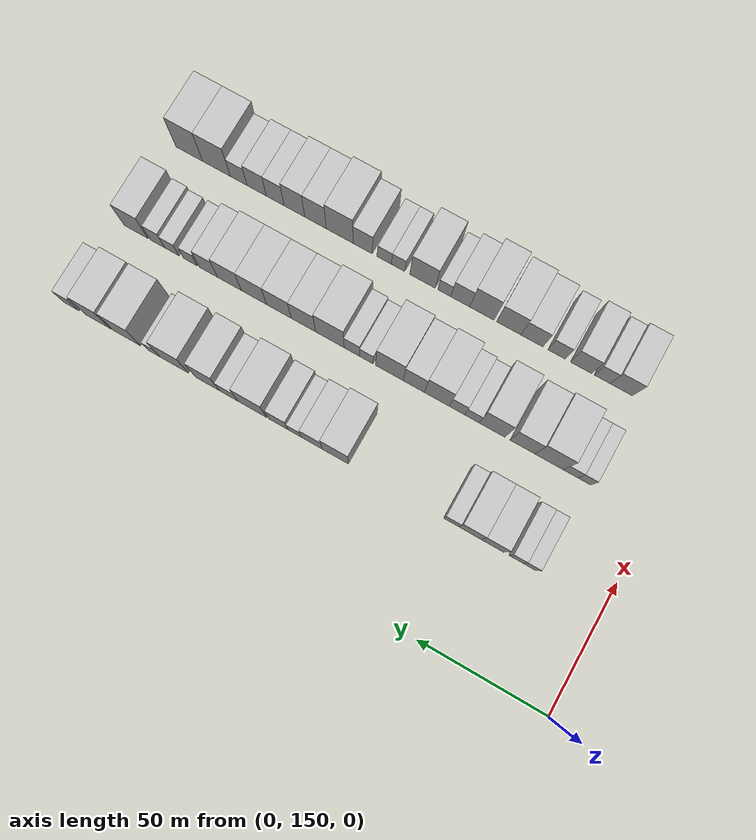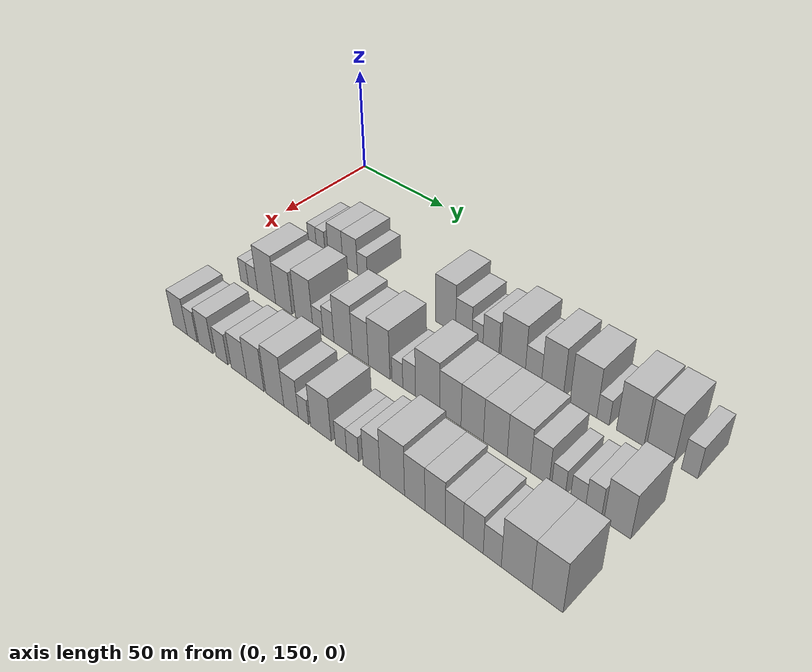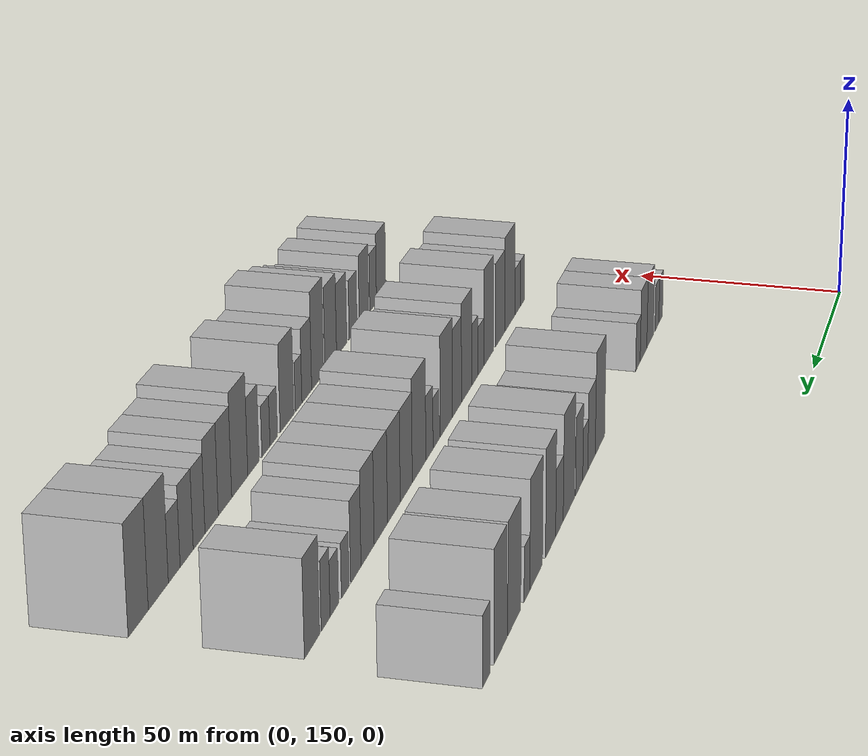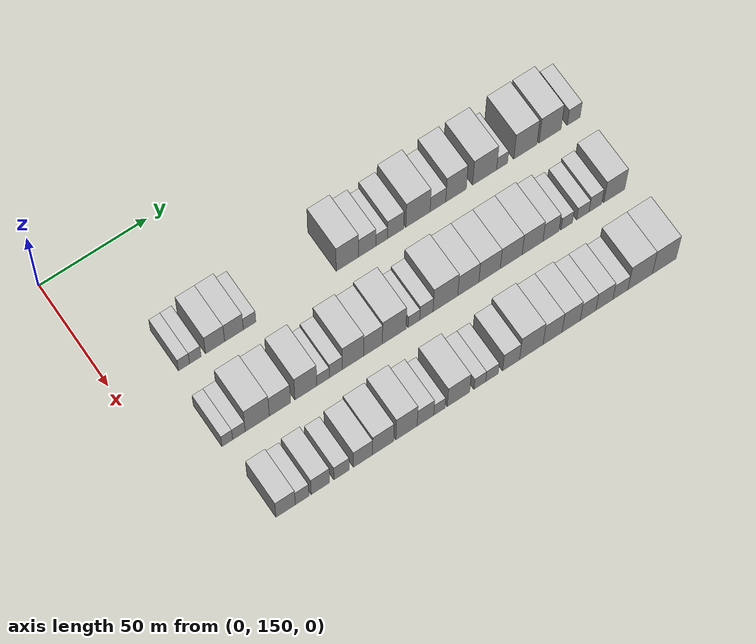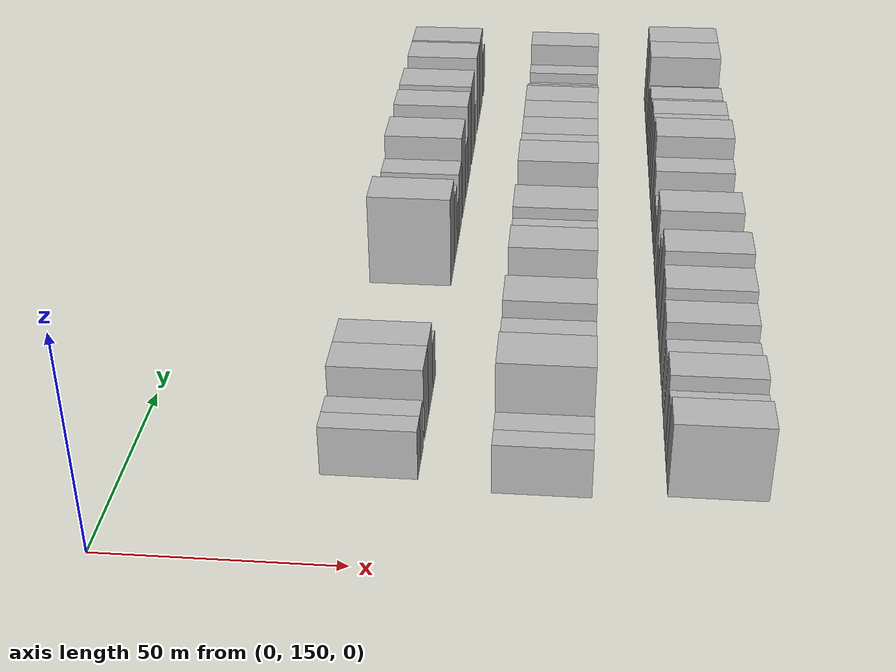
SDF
<sdf version="1.6">
 <world name="default">
  <model name="building_60">
   <static>1</static>
   <pose>50.0000 178.3990 0 0.000000 0.000000 0.000000</pose>
   <link name="link">
    <pose>0 0 6.00 0 0 0</pose>
    <collision name="collision"><geometry><box><size>20.0000 5.0717 12.0000</size></box></geometry></collision>
    <visual name="visual">
     <cast_shadows>0</cast_shadows>
     <geometry><box><size>20.0000 5.0717 12.0000</size></box></geometry>
     <material>
      <script>
       <uri>model://HANNAS_wall/materials/scripts</uri>
       <uri>model://HANNAS_wall/materials/textures</uri>
       <name>vrc/HANNAS_wall</name>
      </script>
     </material>
    </visual>
   </link>
  </model>
  <model name="building_61">
   <static>1</static>
   <pose>50.0000 183.6051 0 0.000000 0.000000 0.000000</pose>
   <link name="link">
    <pose>0 0 6.00 0 0 0</pose>
    <collision name="collision"><geometry><box><size>20.0000 5.3404 12.0000</size></box></geometry></collision>
    <visual name="visual">
     <cast_shadows>0</cast_shadows>
     <geometry><box><size>20.0000 5.3404 12.0000</size></box></geometry>
     <material>
      <script>
       <uri>model://HANNAS_wall/materials/scripts</uri>
       <uri>model://HANNAS_wall/materials/textures</uri>
       <name>vrc/HANNAS_wall</name>
      </script>
     </material>
    </visual>
   </link>
  </model>
  <model name="building_62">
   <static>1</static>
   <pose>50.0000 192.6957 0 0.000000 0.000000 0.000000</pose>
   <link name="link">
    <pose>0 0 9.00 0 0 0</pose>
    <collision name="collision"><geometry><box><size>20.0000 8.8409 18.0000</size></box></geometry></collision>
    <visual name="visual">
     <cast_shadows>0</cast_shadows>
     <geometry><box><size>20.0000 8.8409 18.0000</size></box></geometry>
     <material>
      <script>
       <uri>model://HANNAS_wall/materials/scripts</uri>
       <uri>model://HANNAS_wall/materials/textures</uri>
       <name>vrc/HANNAS_wall</name>
      </script>
     </material>
    </visual>
   </link>
  </model>
  <model name="building_63">
   <static>1</static>
   <pose>50.0000 201.4526 0 0.000000 0.000000 0.000000</pose>
   <link name="link">
    <pose>0 0 9.00 0 0 0</pose>
    <collision name="collision"><geometry><box><size>20.0000 8.6728 18.0000</size></box></geometry></collision>
    <visual name="visual">
     <cast_shadows>0</cast_shadows>
     <geometry><box><size>20.0000 8.6728 18.0000</size></box></geometry>
     <material>
      <script>
       <uri>model://HANNAS_wall/materials/scripts</uri>
       <uri>model://HANNAS_wall/materials/textures</uri>
       <name>vrc/HANNAS_wall</name>
      </script>
     </material>
    </visual>
   </link>
  </model>
  <model name="building_64">
   <static>1</static>
   <pose>50.0000 208.6995 0 0.000000 0.000000 0.000000</pose>
   <link name="link">
    <pose>0 0 6.00 0 0 0</pose>
    <collision name="collision"><geometry><box><size>20.0000 5.8210 12.0000</size></box></geometry></collision>
    <visual name="visual">
     <cast_shadows>0</cast_shadows>
     <geometry><box><size>20.0000 5.8210 12.0000</size></box></geometry>
     <material>
      <script>
       <uri>model://HANNAS_wall/materials/scripts</uri>
       <uri>model://HANNAS_wall/materials/textures</uri>
       <name>vrc/HANNAS_wall</name>
      </script>
     </material>
    </visual>
   </link>
  </model>
  <model name="building_65">
   <static>1</static>
   <pose>50.0000 254.3861 0 0.000000 0.000000 0.000000</pose>
   <link name="link">
    <pose>0 0 12.00 0 0 0</pose>
    <collision name="collision"><geometry><box><size>20.0000 10.5174 24.0000</size></box></geometry></collision>
    <visual name="visual">
     <cast_shadows>0</cast_shadows>
     <geometry><box><size>20.0000 10.5174 24.0000</size></box></geometry>
     <material>
      <script>
       <uri>model://HANNAS_wall/materials/scripts</uri>
       <uri>model://HANNAS_wall/materials/textures</uri>
       <name>vrc/HANNAS_wall</name>
      </script>
     </material>
    </visual>
   </link>
  </model>
  <model name="building_66">
   <static>1</static>
   <pose>50.0000 263.7143 0 0.000000 0.000000 0.000000</pose>
   <link name="link">
    <pose>0 0 9.00 0 0 0</pose>
    <collision name="collision"><geometry><box><size>20.0000 8.1390 18.0000</size></box></geometry></collision>
    <visual name="visual">
     <cast_shadows>0</cast_shadows>
     <geometry><box><size>20.0000 8.1390 18.0000</size></box></geometry>
     <material>
      <script>
       <uri>model://HANNAS_wall/materials/scripts</uri>
       <uri>model://HANNAS_wall/materials/textures</uri>
       <name>vrc/HANNAS_wall</name>
      </script>
     </material>
    </visual>
   </link>
  </model>
  <model name="building_67">
   <static>1</static>
   <pose>50.0000 270.5140 0 0.000000 0.000000 0.000000</pose>
   <link name="link">
    <pose>0 0 6.00 0 0 0</pose>
    <collision name="collision"><geometry><box><size>20.0000 5.4605 12.0000</size></box></geometry></collision>
    <visual name="visual">
     <cast_shadows>0</cast_shadows>
     <geometry><box><size>20.0000 5.4605 12.0000</size></box></geometry>
     <material>
      <script>
       <uri>model://HANNAS_wall/materials/scripts</uri>
       <uri>model://HANNAS_wall/materials/textures</uri>
       <name>vrc/HANNAS_wall</name>
      </script>
     </material>
    </visual>
   </link>
  </model>
  <model name="building_68">
   <static>1</static>
   <pose>50.0000 277.1077 0 0.000000 0.000000 0.000000</pose>
   <link name="link">
    <pose>0 0 9.00 0 0 0</pose>
    <collision name="collision"><geometry><box><size>20.0000 7.7270 18.0000</size></box></geometry></collision>
    <visual name="visual">
     <cast_shadows>0</cast_shadows>
     <geometry><box><size>20.0000 7.7270 18.0000</size></box></geometry>
     <material>
      <script>
       <uri>model://HANNAS_wall/materials/scripts</uri>
       <uri>model://HANNAS_wall/materials/textures</uri>
       <name>vrc/HANNAS_wall</name>
      </script>
     </material>
    </visual>
   </link>
  </model>
  <model name="building_69">
   <static>1</static>
   <pose>50.0000 287.7398 0 0.000000 0.000000 0.000000</pose>
   <link name="link">
    <pose>0 0 12.00 0 0 0</pose>
    <collision name="collision"><geometry><box><size>20.0000 11.5373 24.0000</size></box></geometry></collision>
    <visual name="visual">
     <cast_shadows>0</cast_shadows>
     <geometry><box><size>20.0000 11.5373 24.0000</size></box></geometry>
     <material>
      <script>
       <uri>model://HANNAS_wall/materials/scripts</uri>
       <uri>model://HANNAS_wall/materials/textures</uri>
       <name>vrc/HANNAS_wall</name>
      </script>
     </material>
    </visual>
   </link>
  </model>
  <model name="building_70">
   <static>1</static>
   <pose>50.0000 297.2410 0 0.000000 0.000000 0.000000</pose>
   <link name="link">
    <pose>0 0 7.50 0 0 0</pose>
    <collision name="collision"><geometry><box><size>20.0000 7.4651 15.0000</size></box></geometry></collision>
    <visual name="visual">
     <cast_shadows>0</cast_shadows>
     <geometry><box><size>20.0000 7.4651 15.0000</size></box></geometry>
     <material>
      <script>
       <uri>model://HANNAS_wall/materials/scripts</uri>
       <uri>model://HANNAS_wall/materials/textures</uri>
       <name>vrc/HANNAS_wall</name>
      </script>
     </material>
    </visual>
   </link>
  </model>
  <model name="building_71">
   <static>1</static>
   <pose>50.0000 305.9000 0 0.000000 0.000000 0.000000</pose>
   <link name="link">
    <pose>0 0 12.00 0 0 0</pose>
    <collision name="collision"><geometry><box><size>20.0000 9.8528 24.0000</size></box></geometry></collision>
    <visual name="visual">
     <cast_shadows>0</cast_shadows>
     <geometry><box><size>20.0000 9.8528 24.0000</size></box></geometry>
     <material>
      <script>
       <uri>model://HANNAS_wall/materials/scripts</uri>
       <uri>model://HANNAS_wall/materials/textures</uri>
       <name>vrc/HANNAS_wall</name>
      </script>
     </material>
    </visual>
   </link>
  </model>
  <model name="building_72">
   <static>1</static>
   <pose>50.0000 319.5955 0 0.000000 0.000000 0.000000</pose>
   <link name="link">
    <pose>0 0 12.00 0 0 0</pose>
    <collision name="collision"><geometry><box><size>20.0000 11.5381 24.0000</size></box></geometry></collision>
    <visual name="visual">
     <cast_shadows>0</cast_shadows>
     <geometry><box><size>20.0000 11.5381 24.0000</size></box></geometry>
     <material>
      <script>
       <uri>model://HANNAS_wall/materials/scripts</uri>
       <uri>model://HANNAS_wall/materials/textures</uri>
       <name>vrc/HANNAS_wall</name>
      </script>
     </material>
    </visual>
   </link>
  </model>
  <model name="building_73">
   <static>1</static>
   <pose>50.0000 327.9993 0 0.000000 0.000000 0.000000</pose>
   <link name="link">
    <pose>0 0 6.00 0 0 0</pose>
    <collision name="collision"><geometry><box><size>20.0000 5.2696 12.0000</size></box></geometry></collision>
    <visual name="visual">
     <cast_shadows>0</cast_shadows>
     <geometry><box><size>20.0000 5.2696 12.0000</size></box></geometry>
     <material>
      <script>
       <uri>model://HANNAS_wall/materials/scripts</uri>
       <uri>model://HANNAS_wall/materials/textures</uri>
       <name>vrc/HANNAS_wall</name>
      </script>
     </material>
    </visual>
   </link>
  </model>
  <model name="building_74">
   <static>1</static>
   <pose>50.0000 339.2341 0 0.000000 0.000000 0.000000</pose>
   <link name="link">
    <pose>0 0 12.00 0 0 0</pose>
    <collision name="collision"><geometry><box><size>20.0000 11.2000 24.0000</size></box></geometry></collision>
    <visual name="visual">
     <cast_shadows>0</cast_shadows>
     <geometry><box><size>20.0000 11.2000 24.0000</size></box></geometry>
     <material>
      <script>
       <uri>model://HANNAS_wall/materials/scripts</uri>
       <uri>model://HANNAS_wall/materials/textures</uri>
       <name>vrc/HANNAS_wall</name>
      </script>
     </material>
    </visual>
   </link>
  </model>
  <model name="building_75">
   <static>1</static>
   <pose>50.0000 351.1819 0 0.000000 0.000000 0.000000</pose>
   <link name="link">
    <pose>0 0 12.00 0 0 0</pose>
    <collision name="collision"><geometry><box><size>20.0000 10.6956 24.0000</size></box></geometry></collision>
    <visual name="visual">
     <cast_shadows>0</cast_shadows>
     <geometry><box><size>20.0000 10.6956 24.0000</size></box></geometry>
     <material>
      <script>
       <uri>model://HANNAS_wall/materials/scripts</uri>
       <uri>model://HANNAS_wall/materials/textures</uri>
       <name>vrc/HANNAS_wall</name>
      </script>
     </material>
    </visual>
   </link>
  </model>
  <model name="building_76">
   <static>1</static>
   <pose>50.0000 362.6598 0 0.000000 0.000000 0.000000</pose>
   <link name="link">
    <pose>0 0 7.50 0 0 0</pose>
    <collision name="collision"><geometry><box><size>20.0000 6.2600 15.0000</size></box></geometry></collision>
    <visual name="visual">
     <cast_shadows>0</cast_shadows>
     <geometry><box><size>20.0000 6.2600 15.0000</size></box></geometry>
     <material>
      <script>
       <uri>model://HANNAS_wall/materials/scripts</uri>
       <uri>model://HANNAS_wall/materials/textures</uri>
       <name>vrc/HANNAS_wall</name>
      </script>
     </material>
    </visual>
   </link>
  </model>
  <model name="building_139">
   <static>1</static>
   <pose>85.0000 175.3890 0 0.000000 0.000000 0.000000</pose>
   <link name="link">
    <pose>0 0 6.00 0 0 0</pose>
    <collision name="collision"><geometry><box><size>20.0000 4.9404 12.0000</size></box></geometry></collision>
    <visual name="visual">
     <cast_shadows>0</cast_shadows>
     <geometry><box><size>20.0000 4.9404 12.0000</size></box></geometry>
     <material>
      <script>
       <uri>model://HANNAS_wall/materials/scripts</uri>
       <uri>model://HANNAS_wall/materials/textures</uri>
       <name>vrc/HANNAS_wall</name>
      </script>
     </material>
    </visual>
   </link>
  </model>
  <model name="building_140">
   <static>1</static>
   <pose>85.0000 180.7229 0 0.000000 0.000000 0.000000</pose>
   <link name="link">
    <pose>0 0 6.00 0 0 0</pose>
    <collision name="collision"><geometry><box><size>20.0000 5.7275 12.0000</size></box></geometry></collision>
    <visual name="visual">
     <cast_shadows>0</cast_shadows>
     <geometry><box><size>20.0000 5.7275 12.0000</size></box></geometry>
     <material>
      <script>
       <uri>model://HANNAS_wall/materials/scripts</uri>
       <uri>model://HANNAS_wall/materials/textures</uri>
       <name>vrc/HANNAS_wall</name>
      </script>
     </material>
    </visual>
   </link>
  </model>
  <model name="building_141">
   <static>1</static>
   <pose>85.0000 189.1299 0 0.000000 0.000000 0.000000</pose>
   <link name="link">
    <pose>0 0 12.00 0 0 0</pose>
    <collision name="collision"><geometry><box><size>20.0000 11.0865 24.0000</size></box></geometry></collision>
    <visual name="visual">
     <cast_shadows>0</cast_shadows>
     <geometry><box><size>20.0000 11.0865 24.0000</size></box></geometry>
     <material>
      <script>
       <uri>model://HANNAS_wall/materials/scripts</uri>
       <uri>model://HANNAS_wall/materials/textures</uri>
       <name>vrc/HANNAS_wall</name>
      </script>
     </material>
    </visual>
   </link>
  </model>
  <model name="building_142">
   <static>1</static>
   <pose>85.0000 199.5646 0 0.000000 0.000000 0.000000</pose>
   <link name="link">
    <pose>0 0 10.50 0 0 0</pose>
    <collision name="collision"><geometry><box><size>20.0000 9.7830 21.0000</size></box></geometry></collision>
    <visual name="visual">
     <cast_shadows>0</cast_shadows>
     <geometry><box><size>20.0000 9.7830 21.0000</size></box></geometry>
     <material>
      <script>
       <uri>model://HANNAS_wall/materials/scripts</uri>
       <uri>model://HANNAS_wall/materials/textures</uri>
       <name>vrc/HANNAS_wall</name>
      </script>
     </material>
    </visual>
   </link>
  </model>
  <model name="building_143">
   <static>1</static>
   <pose>85.0000 211.5332 0 0.000000 0.000000 0.000000</pose>
   <link name="link">
    <pose>0 0 12.00 0 0 0</pose>
    <collision name="collision"><geometry><box><size>20.0000 10.1542 24.0000</size></box></geometry></collision>
    <visual name="visual">
     <cast_shadows>0</cast_shadows>
     <geometry><box><size>20.0000 10.1542 24.0000</size></box></geometry>
     <material>
      <script>
       <uri>model://HANNAS_wall/materials/scripts</uri>
       <uri>model://HANNAS_wall/materials/textures</uri>
       <name>vrc/HANNAS_wall</name>
      </script>
     </material>
    </visual>
   </link>
  </model>
  <model name="building_144">
   <static>1</static>
   <pose>85.0000 219.5038 0 0.000000 0.000000 0.000000</pose>
   <link name="link">
    <pose>0 0 6.00 0 0 0</pose>
    <collision name="collision"><geometry><box><size>20.0000 5.7872 12.0000</size></box></geometry></collision>
    <visual name="visual">
     <cast_shadows>0</cast_shadows>
     <geometry><box><size>20.0000 5.7872 12.0000</size></box></geometry>
     <material>
      <script>
       <uri>model://HANNAS_wall/materials/scripts</uri>
       <uri>model://HANNAS_wall/materials/textures</uri>
       <name>vrc/HANNAS_wall</name>
      </script>
     </material>
    </visual>
   </link>
  </model>
  <model name="building_145">
   <static>1</static>
   <pose>85.0000 225.4265 0 0.000000 0.000000 0.000000</pose>
   <link name="link">
    <pose>0 0 7.50 0 0 0</pose>
    <collision name="collision"><geometry><box><size>20.0000 6.0582 15.0000</size></box></geometry></collision>
    <visual name="visual">
     <cast_shadows>0</cast_shadows>
     <geometry><box><size>20.0000 6.0582 15.0000</size></box></geometry>
     <material>
      <script>
       <uri>model://HANNAS_wall/materials/scripts</uri>
       <uri>model://HANNAS_wall/materials/textures</uri>
       <name>vrc/HANNAS_wall</name>
      </script>
     </material>
    </visual>
   </link>
  </model>
  <model name="building_146">
   <static>1</static>
   <pose>85.0000 233.4573 0 0.000000 0.000000 0.000000</pose>
   <link name="link">
    <pose>0 0 12.00 0 0 0</pose>
    <collision name="collision"><geometry><box><size>20.0000 10.0033 24.0000</size></box></geometry></collision>
    <visual name="visual">
     <cast_shadows>0</cast_shadows>
     <geometry><box><size>20.0000 10.0033 24.0000</size></box></geometry>
     <material>
      <script>
       <uri>model://HANNAS_wall/materials/scripts</uri>
       <uri>model://HANNAS_wall/materials/textures</uri>
       <name>vrc/HANNAS_wall</name>
      </script>
     </material>
    </visual>
   </link>
  </model>
  <model name="building_147">
   <static>1</static>
   <pose>85.0000 242.7644 0 0.000000 0.000000 0.000000</pose>
   <link name="link">
    <pose>0 0 10.50 0 0 0</pose>
    <collision name="collision"><geometry><box><size>20.0000 8.6109 21.0000</size></box></geometry></collision>
    <visual name="visual">
     <cast_shadows>0</cast_shadows>
     <geometry><box><size>20.0000 8.6109 21.0000</size></box></geometry>
     <material>
      <script>
       <uri>model://HANNAS_wall/materials/scripts</uri>
       <uri>model://HANNAS_wall/materials/textures</uri>
       <name>vrc/HANNAS_wall</name>
      </script>
     </material>
    </visual>
   </link>
  </model>
  <model name="building_148">
   <static>1</static>
   <pose>85.0000 252.6089 0 0.000000 0.000000 0.000000</pose>
   <link name="link">
    <pose>0 0 12.00 0 0 0</pose>
    <collision name="collision"><geometry><box><size>20.0000 11.0781 24.0000</size></box></geometry></collision>
    <visual name="visual">
     <cast_shadows>0</cast_shadows>
     <geometry><box><size>20.0000 11.0781 24.0000</size></box></geometry>
     <material>
      <script>
       <uri>model://HANNAS_wall/materials/scripts</uri>
       <uri>model://HANNAS_wall/materials/textures</uri>
       <name>vrc/HANNAS_wall</name>
      </script>
     </material>
    </visual>
   </link>
  </model>
  <model name="building_149">
   <static>1</static>
   <pose>85.0000 261.8703 0 0.000000 0.000000 0.000000</pose>
   <link name="link">
    <pose>0 0 6.00 0 0 0</pose>
    <collision name="collision"><geometry><box><size>20.0000 5.4449 12.0000</size></box></geometry></collision>
    <visual name="visual">
     <cast_shadows>0</cast_shadows>
     <geometry><box><size>20.0000 5.4449 12.0000</size></box></geometry>
     <material>
      <script>
       <uri>model://HANNAS_wall/materials/scripts</uri>
       <uri>model://HANNAS_wall/materials/textures</uri>
       <name>vrc/HANNAS_wall</name>
      </script>
     </material>
    </visual>
   </link>
  </model>
  <model name="building_150">
   <static>1</static>
   <pose>85.0000 267.7256 0 0.000000 0.000000 0.000000</pose>
   <link name="link">
    <pose>0 0 7.50 0 0 0</pose>
    <collision name="collision"><geometry><box><size>20.0000 6.2657 15.0000</size></box></geometry></collision>
    <visual name="visual">
     <cast_shadows>0</cast_shadows>
     <geometry><box><size>20.0000 6.2657 15.0000</size></box></geometry>
     <material>
      <script>
       <uri>model://HANNAS_wall/materials/scripts</uri>
       <uri>model://HANNAS_wall/materials/textures</uri>
       <name>vrc/HANNAS_wall</name>
      </script>
     </material>
    </visual>
   </link>
  </model>
  <model name="building_151">
   <static>1</static>
   <pose>85.0000 276.6901 0 0.000000 0.000000 0.000000</pose>
   <link name="link">
    <pose>0 0 12.00 0 0 0</pose>
    <collision name="collision"><geometry><box><size>20.0000 11.6633 24.0000</size></box></geometry></collision>
    <visual name="visual">
     <cast_shadows>0</cast_shadows>
     <geometry><box><size>20.0000 11.6633 24.0000</size></box></geometry>
     <material>
      <script>
       <uri>model://HANNAS_wall/materials/scripts</uri>
       <uri>model://HANNAS_wall/materials/textures</uri>
       <name>vrc/HANNAS_wall</name>
      </script>
     </material>
    </visual>
   </link>
  </model>
  <model name="building_152">
   <static>1</static>
   <pose>85.0000 287.4924 0 0.000000 0.000000 0.000000</pose>
   <link name="link">
    <pose>0 0 10.50 0 0 0</pose>
    <collision name="collision"><geometry><box><size>20.0000 9.9414 21.0000</size></box></geometry></collision>
    <visual name="visual">
     <cast_shadows>0</cast_shadows>
     <geometry><box><size>20.0000 9.9414 21.0000</size></box></geometry>
     <material>
      <script>
       <uri>model://HANNAS_wall/materials/scripts</uri>
       <uri>model://HANNAS_wall/materials/textures</uri>
       <name>vrc/HANNAS_wall</name>
      </script>
     </material>
    </visual>
   </link>
  </model>
  <model name="building_153">
   <static>1</static>
   <pose>85.0000 297.5612 0 0.000000 0.000000 0.000000</pose>
   <link name="link">
    <pose>0 0 10.50 0 0 0</pose>
    <collision name="collision"><geometry><box><size>20.0000 10.1963 21.0000</size></box></geometry></collision>
    <visual name="visual">
     <cast_shadows>0</cast_shadows>
     <geometry><box><size>20.0000 10.1963 21.0000</size></box></geometry>
     <material>
      <script>
       <uri>model://HANNAS_wall/materials/scripts</uri>
       <uri>model://HANNAS_wall/materials/textures</uri>
       <name>vrc/HANNAS_wall</name>
      </script>
     </material>
    </visual>
   </link>
  </model>
  <model name="building_154">
   <static>1</static>
   <pose>85.0000 307.8718 0 0.000000 0.000000 0.000000</pose>
   <link name="link">
    <pose>0 0 10.50 0 0 0</pose>
    <collision name="collision"><geometry><box><size>20.0000 10.4248 21.0000</size></box></geometry></collision>
    <visual name="visual">
     <cast_shadows>0</cast_shadows>
     <geometry><box><size>20.0000 10.4248 21.0000</size></box></geometry>
     <material>
      <script>
       <uri>model://HANNAS_wall/materials/scripts</uri>
       <uri>model://HANNAS_wall/materials/textures</uri>
       <name>vrc/HANNAS_wall</name>
      </script>
     </material>
    </visual>
   </link>
  </model>
  <model name="building_155">
   <static>1</static>
   <pose>85.0000 318.0395 0 0.000000 0.000000 0.000000</pose>
   <link name="link">
    <pose>0 0 10.50 0 0 0</pose>
    <collision name="collision"><geometry><box><size>20.0000 9.9106 21.0000</size></box></geometry></collision>
    <visual name="visual">
     <cast_shadows>0</cast_shadows>
     <geometry><box><size>20.0000 9.9106 21.0000</size></box></geometry>
     <material>
      <script>
       <uri>model://HANNAS_wall/materials/scripts</uri>
       <uri>model://HANNAS_wall/materials/textures</uri>
       <name>vrc/HANNAS_wall</name>
      </script>
     </material>
    </visual>
   </link>
  </model>
  <model name="building_156">
   <static>1</static>
   <pose>85.0000 326.8416 0 0.000000 0.000000 0.000000</pose>
   <link name="link">
    <pose>0 0 9.00 0 0 0</pose>
    <collision name="collision"><geometry><box><size>20.0000 7.6937 18.0000</size></box></geometry></collision>
    <visual name="visual">
     <cast_shadows>0</cast_shadows>
     <geometry><box><size>20.0000 7.6937 18.0000</size></box></geometry>
     <material>
      <script>
       <uri>model://HANNAS_wall/materials/scripts</uri>
       <uri>model://HANNAS_wall/materials/textures</uri>
       <name>vrc/HANNAS_wall</name>
      </script>
     </material>
    </visual>
   </link>
  </model>
  <model name="building_157">
   <static>1</static>
   <pose>85.0000 334.4612 0 0.000000 0.000000 0.000000</pose>
   <link name="link">
    <pose>0 0 6.00 0 0 0</pose>
    <collision name="collision"><geometry><box><size>20.0000 5.5454 12.0000</size></box></geometry></collision>
    <visual name="visual">
     <cast_shadows>0</cast_shadows>
     <geometry><box><size>20.0000 5.5454 12.0000</size></box></geometry>
     <material>
      <script>
       <uri>model://HANNAS_wall/materials/scripts</uri>
       <uri>model://HANNAS_wall/materials/textures</uri>
       <name>vrc/HANNAS_wall</name>
      </script>
     </material>
    </visual>
   </link>
  </model>
  <model name="building_158">
   <static>1</static>
   <pose>85.0000 342.1997 0 0.000000 0.000000 0.000000</pose>
   <link name="link">
    <pose>0 0 6.00 0 0 0</pose>
    <collision name="collision"><geometry><box><size>20.0000 5.9317 12.0000</size></box></geometry></collision>
    <visual name="visual">
     <cast_shadows>0</cast_shadows>
     <geometry><box><size>20.0000 5.9317 12.0000</size></box></geometry>
     <material>
      <script>
       <uri>model://HANNAS_wall/materials/scripts</uri>
       <uri>model://HANNAS_wall/materials/textures</uri>
       <name>vrc/HANNAS_wall</name>
      </script>
     </material>
    </visual>
   </link>
  </model>
  <model name="building_159">
   <static>1</static>
   <pose>85.0000 348.2353 0 0.000000 0.000000 0.000000</pose>
   <link name="link">
    <pose>0 0 7.50 0 0 0</pose>
    <collision name="collision"><geometry><box><size>20.0000 6.1394 15.0000</size></box></geometry></collision>
    <visual name="visual">
     <cast_shadows>0</cast_shadows>
     <geometry><box><size>20.0000 6.1394 15.0000</size></box></geometry>
     <material>
      <script>
       <uri>model://HANNAS_wall/materials/scripts</uri>
       <uri>model://HANNAS_wall/materials/textures</uri>
       <name>vrc/HANNAS_wall</name>
      </script>
     </material>
    </visual>
   </link>
  </model>
  <model name="building_160">
   <static>1</static>
   <pose>85.0000 357.3779 0 0.000000 0.000000 0.000000</pose>
   <link name="link">
    <pose>0 0 10.50 0 0 0</pose>
    <collision name="collision"><geometry><box><size>20.0000 10.1458 21.0000</size></box></geometry></collision>
    <visual name="visual">
     <cast_shadows>0</cast_shadows>
     <geometry><box><size>20.0000 10.1458 21.0000</size></box></geometry>
     <material>
      <script>
       <uri>model://HANNAS_wall/materials/scripts</uri>
       <uri>model://HANNAS_wall/materials/textures</uri>
       <name>vrc/HANNAS_wall</name>
      </script>
     </material>
    </visual>
   </link>
  </model>
  <model name="building_218">
   <static>1</static>
   <pose>120.0000 178.8946 0 0.000000 0.000000 0.000000</pose>
   <link name="link">
    <pose>0 0 9.00 0 0 0</pose>
    <collision name="collision"><geometry><box><size>20.0000 8.8133 18.0000</size></box></geometry></collision>
    <visual name="visual">
     <cast_shadows>0</cast_shadows>
     <geometry><box><size>20.0000 8.8133 18.0000</size></box></geometry>
     <material>
      <script>
       <uri>model://HANNAS_wall/materials/scripts</uri>
       <uri>model://HANNAS_wall/materials/textures</uri>
       <name>vrc/HANNAS_wall</name>
      </script>
     </material>
    </visual>
   </link>
  </model>
  <model name="building_219">
   <static>1</static>
   <pose>120.0000 186.4276 0 0.000000 0.000000 0.000000</pose>
   <link name="link">
    <pose>0 0 7.50 0 0 0</pose>
    <collision name="collision"><geometry><box><size>20.0000 6.2526 15.0000</size></box></geometry></collision>
    <visual name="visual">
     <cast_shadows>0</cast_shadows>
     <geometry><box><size>20.0000 6.2526 15.0000</size></box></geometry>
     <material>
      <script>
       <uri>model://HANNAS_wall/materials/scripts</uri>
       <uri>model://HANNAS_wall/materials/textures</uri>
       <name>vrc/HANNAS_wall</name>
      </script>
     </material>
    </visual>
   </link>
  </model>
  <model name="building_220">
   <static>1</static>
   <pose>120.0000 194.7641 0 0.000000 0.000000 0.000000</pose>
   <link name="link">
    <pose>0 0 9.00 0 0 0</pose>
    <collision name="collision"><geometry><box><size>20.0000 8.4205 18.0000</size></box></geometry></collision>
    <visual name="visual">
     <cast_shadows>0</cast_shadows>
     <geometry><box><size>20.0000 8.4205 18.0000</size></box></geometry>
     <material>
      <script>
       <uri>model://HANNAS_wall/materials/scripts</uri>
       <uri>model://HANNAS_wall/materials/textures</uri>
       <name>vrc/HANNAS_wall</name>
      </script>
     </material>
    </visual>
   </link>
  </model>
  <model name="building_221">
   <static>1</static>
   <pose>120.0000 204.4615 0 0.000000 0.000000 0.000000</pose>
   <link name="link">
    <pose>0 0 7.50 0 0 0</pose>
    <collision name="collision"><geometry><box><size>20.0000 6.9743 15.0000</size></box></geometry></collision>
    <visual name="visual">
     <cast_shadows>0</cast_shadows>
     <geometry><box><size>20.0000 6.9743 15.0000</size></box></geometry>
     <material>
      <script>
       <uri>model://HANNAS_wall/materials/scripts</uri>
       <uri>model://HANNAS_wall/materials/textures</uri>
       <name>vrc/HANNAS_wall</name>
      </script>
     </material>
    </visual>
   </link>
  </model>
  <model name="building_222">
   <static>1</static>
   <pose>120.0000 214.3417 0 0.000000 0.000000 0.000000</pose>
   <link name="link">
    <pose>0 0 9.00 0 0 0</pose>
    <collision name="collision"><geometry><box><size>20.0000 8.7860 18.0000</size></box></geometry></collision>
    <visual name="visual">
     <cast_shadows>0</cast_shadows>
     <geometry><box><size>20.0000 8.7860 18.0000</size></box></geometry>
     <material>
      <script>
       <uri>model://HANNAS_wall/materials/scripts</uri>
       <uri>model://HANNAS_wall/materials/textures</uri>
       <name>vrc/HANNAS_wall</name>
      </script>
     </material>
    </visual>
   </link>
  </model>
  <model name="building_223">
   <static>1</static>
   <pose>120.0000 223.6346 0 0.000000 0.000000 0.000000</pose>
   <link name="link">
    <pose>0 0 10.50 0 0 0</pose>
    <collision name="collision"><geometry><box><size>20.0000 9.7998 21.0000</size></box></geometry></collision>
    <visual name="visual">
     <cast_shadows>0</cast_shadows>
     <geometry><box><size>20.0000 9.7998 21.0000</size></box></geometry>
     <material>
      <script>
       <uri>model://HANNAS_wall/materials/scripts</uri>
       <uri>model://HANNAS_wall/materials/textures</uri>
       <name>vrc/HANNAS_wall</name>
      </script>
     </material>
    </visual>
   </link>
  </model>
  <model name="building_224">
   <static>1</static>
   <pose>120.0000 234.4501 0 0.000000 0.000000 0.000000</pose>
   <link name="link">
    <pose>0 0 12.00 0 0 0</pose>
    <collision name="collision"><geometry><box><size>20.0000 9.8311 24.0000</size></box></geometry></collision>
    <visual name="visual">
     <cast_shadows>0</cast_shadows>
     <geometry><box><size>20.0000 9.8311 24.0000</size></box></geometry>
     <material>
      <script>
       <uri>model://HANNAS_wall/materials/scripts</uri>
       <uri>model://HANNAS_wall/materials/textures</uri>
       <name>vrc/HANNAS_wall</name>
      </script>
     </material>
    </visual>
   </link>
  </model>
  <model name="building_225">
   <static>1</static>
   <pose>120.0000 243.2297 0 0.000000 0.000000 0.000000</pose>
   <link name="link">
    <pose>0 0 9.00 0 0 0</pose>
    <collision name="collision"><geometry><box><size>20.0000 7.7280 18.0000</size></box></geometry></collision>
    <visual name="visual">
     <cast_shadows>0</cast_shadows>
     <geometry><box><size>20.0000 7.7280 18.0000</size></box></geometry>
     <material>
      <script>
       <uri>model://HANNAS_wall/materials/scripts</uri>
       <uri>model://HANNAS_wall/materials/textures</uri>
       <name>vrc/HANNAS_wall</name>
      </script>
     </material>
    </visual>
   </link>
  </model>
  <model name="building_226">
   <static>1</static>
   <pose>120.0000 249.7357 0 0.000000 0.000000 0.000000</pose>
   <link name="link">
    <pose>0 0 6.00 0 0 0</pose>
    <collision name="collision"><geometry><box><size>20.0000 5.2840 12.0000</size></box></geometry></collision>
    <visual name="visual">
     <cast_shadows>0</cast_shadows>
     <geometry><box><size>20.0000 5.2840 12.0000</size></box></geometry>
     <material>
      <script>
       <uri>model://HANNAS_wall/materials/scripts</uri>
       <uri>model://HANNAS_wall/materials/textures</uri>
       <name>vrc/HANNAS_wall</name>
      </script>
     </material>
    </visual>
   </link>
  </model>
  <model name="building_227">
   <static>1</static>
   <pose>120.0000 258.6104 0 0.000000 0.000000 0.000000</pose>
   <link name="link">
    <pose>0 0 10.50 0 0 0</pose>
    <collision name="collision"><geometry><box><size>20.0000 10.4655 21.0000</size></box></geometry></collision>
    <visual name="visual">
     <cast_shadows>0</cast_shadows>
     <geometry><box><size>20.0000 10.4655 21.0000</size></box></geometry>
     <material>
      <script>
       <uri>model://HANNAS_wall/materials/scripts</uri>
       <uri>model://HANNAS_wall/materials/textures</uri>
       <name>vrc/HANNAS_wall</name>
      </script>
     </material>
    </visual>
   </link>
  </model>
  <model name="building_228">
   <static>1</static>
   <pose>120.0000 268.6120 0 0.000000 0.000000 0.000000</pose>
   <link name="link">
    <pose>0 0 6.00 0 0 0</pose>
    <collision name="collision"><geometry><box><size>20.0000 5.5379 12.0000</size></box></geometry></collision>
    <visual name="visual">
     <cast_shadows>0</cast_shadows>
     <geometry><box><size>20.0000 5.5379 12.0000</size></box></geometry>
     <material>
      <script>
       <uri>model://HANNAS_wall/materials/scripts</uri>
       <uri>model://HANNAS_wall/materials/textures</uri>
       <name>vrc/HANNAS_wall</name>
      </script>
     </material>
    </visual>
   </link>
  </model>
  <model name="building_229">
   <static>1</static>
   <pose>120.0000 274.3272 0 0.000000 0.000000 0.000000</pose>
   <link name="link">
    <pose>0 0 6.00 0 0 0</pose>
    <collision name="collision"><geometry><box><size>20.0000 5.8925 12.0000</size></box></geometry></collision>
    <visual name="visual">
     <cast_shadows>0</cast_shadows>
     <geometry><box><size>20.0000 5.8925 12.0000</size></box></geometry>
     <material>
      <script>
       <uri>model://HANNAS_wall/materials/scripts</uri>
       <uri>model://HANNAS_wall/materials/textures</uri>
       <name>vrc/HANNAS_wall</name>
      </script>
     </material>
    </visual>
   </link>
  </model>
  <model name="building_230">
   <static>1</static>
   <pose>120.0000 283.2647 0 0.000000 0.000000 0.000000</pose>
   <link name="link">
    <pose>0 0 9.00 0 0 0</pose>
    <collision name="collision"><geometry><box><size>20.0000 7.9824 18.0000</size></box></geometry></collision>
    <visual name="visual">
     <cast_shadows>0</cast_shadows>
     <geometry><box><size>20.0000 7.9824 18.0000</size></box></geometry>
     <material>
      <script>
       <uri>model://HANNAS_wall/materials/scripts</uri>
       <uri>model://HANNAS_wall/materials/textures</uri>
       <name>vrc/HANNAS_wall</name>
      </script>
     </material>
    </visual>
   </link>
  </model>
  <model name="building_231">
   <static>1</static>
   <pose>120.0000 292.8208 0 0.000000 0.000000 0.000000</pose>
   <link name="link">
    <pose>0 0 12.00 0 0 0</pose>
    <collision name="collision"><geometry><box><size>20.0000 11.1298 24.0000</size></box></geometry></collision>
    <visual name="visual">
     <cast_shadows>0</cast_shadows>
     <geometry><box><size>20.0000 11.1298 24.0000</size></box></geometry>
     <material>
      <script>
       <uri>model://HANNAS_wall/materials/scripts</uri>
       <uri>model://HANNAS_wall/materials/textures</uri>
       <name>vrc/HANNAS_wall</name>
      </script>
     </material>
    </visual>
   </link>
  </model>
  <model name="building_232">
   <static>1</static>
   <pose>120.0000 302.8707 0 0.000000 0.000000 0.000000</pose>
   <link name="link">
    <pose>0 0 10.50 0 0 0</pose>
    <collision name="collision"><geometry><box><size>20.0000 8.9701 21.0000</size></box></geometry></collision>
    <visual name="visual">
     <cast_shadows>0</cast_shadows>
     <geometry><box><size>20.0000 8.9701 21.0000</size></box></geometry>
     <material>
      <script>
       <uri>model://HANNAS_wall/materials/scripts</uri>
       <uri>model://HANNAS_wall/materials/textures</uri>
       <name>vrc/HANNAS_wall</name>
      </script>
     </material>
    </visual>
   </link>
  </model>
  <model name="building_233">
   <static>1</static>
   <pose>120.0000 311.6809 0 0.000000 0.000000 0.000000</pose>
   <link name="link">
    <pose>0 0 10.50 0 0 0</pose>
    <collision name="collision"><geometry><box><size>20.0000 8.6502 21.0000</size></box></geometry></collision>
    <visual name="visual">
     <cast_shadows>0</cast_shadows>
     <geometry><box><size>20.0000 8.6502 21.0000</size></box></geometry>
     <material>
      <script>
       <uri>model://HANNAS_wall/materials/scripts</uri>
       <uri>model://HANNAS_wall/materials/textures</uri>
       <name>vrc/HANNAS_wall</name>
      </script>
     </material>
    </visual>
   </link>
  </model>
  <model name="building_234">
   <static>1</static>
   <pose>120.0000 319.7395 0 0.000000 0.000000 0.000000</pose>
   <link name="link">
    <pose>0 0 9.00 0 0 0</pose>
    <collision name="collision"><geometry><box><size>20.0000 7.4672 18.0000</size></box></geometry></collision>
    <visual name="visual">
     <cast_shadows>0</cast_shadows>
     <geometry><box><size>20.0000 7.4672 18.0000</size></box></geometry>
     <material>
      <script>
       <uri>model://HANNAS_wall/materials/scripts</uri>
       <uri>model://HANNAS_wall/materials/textures</uri>
       <name>vrc/HANNAS_wall</name>
      </script>
     </material>
    </visual>
   </link>
  </model>
  <model name="building_235">
   <static>1</static>
   <pose>120.0000 327.5449 0 0.000000 0.000000 0.000000</pose>
   <link name="link">
    <pose>0 0 9.00 0 0 0</pose>
    <collision name="collision"><geometry><box><size>20.0000 8.1436 18.0000</size></box></geometry></collision>
    <visual name="visual">
     <cast_shadows>0</cast_shadows>
     <geometry><box><size>20.0000 8.1436 18.0000</size></box></geometry>
     <material>
      <script>
       <uri>model://HANNAS_wall/materials/scripts</uri>
       <uri>model://HANNAS_wall/materials/textures</uri>
       <name>vrc/HANNAS_wall</name>
      </script>
     </material>
    </visual>
   </link>
  </model>
  <model name="building_236">
   <static>1</static>
   <pose>120.0000 335.1827 0 0.000000 0.000000 0.000000</pose>
   <link name="link">
    <pose>0 0 7.50 0 0 0</pose>
    <collision name="collision"><geometry><box><size>20.0000 7.1320 15.0000</size></box></geometry></collision>
    <visual name="visual">
     <cast_shadows>0</cast_shadows>
     <geometry><box><size>20.0000 7.1320 15.0000</size></box></geometry>
     <material>
      <script>
       <uri>model://HANNAS_wall/materials/scripts</uri>
       <uri>model://HANNAS_wall/materials/textures</uri>
       <name>vrc/HANNAS_wall</name>
      </script>
     </material>
    </visual>
   </link>
  </model>
  <model name="building_237">
   <static>1</static>
   <pose>120.0000 344.6405 0 0.000000 0.000000 0.000000</pose>
   <link name="link">
    <pose>0 0 12.00 0 0 0</pose>
    <collision name="collision"><geometry><box><size>20.0000 11.7836 24.0000</size></box></geometry></collision>
    <visual name="visual">
     <cast_shadows>0</cast_shadows>
     <geometry><box><size>20.0000 11.7836 24.0000</size></box></geometry>
     <material>
      <script>
       <uri>model://HANNAS_wall/materials/scripts</uri>
       <uri>model://HANNAS_wall/materials/textures</uri>
       <name>vrc/HANNAS_wall</name>
      </script>
     </material>
    </visual>
   </link>
  </model>
  <model name="building_238">
   <static>1</static>
   <pose>120.0000 356.2548 0 0.000000 0.000000 0.000000</pose>
   <link name="link">
    <pose>0 0 12.00 0 0 0</pose>
    <collision name="collision"><geometry><box><size>20.0000 11.4448 24.0000</size></box></geometry></collision>
    <visual name="visual">
     <cast_shadows>0</cast_shadows>
     <geometry><box><size>20.0000 11.4448 24.0000</size></box></geometry>
     <material>
      <script>
       <uri>model://HANNAS_wall/materials/scripts</uri>
       <uri>model://HANNAS_wall/materials/textures</uri>
       <name>vrc/HANNAS_wall</name>
      </script>
     </material>
    </visual>
   </link>
  </model>
 </world>
</sdf>
